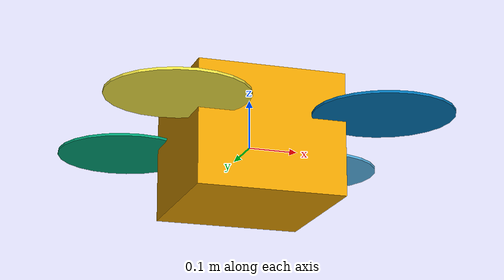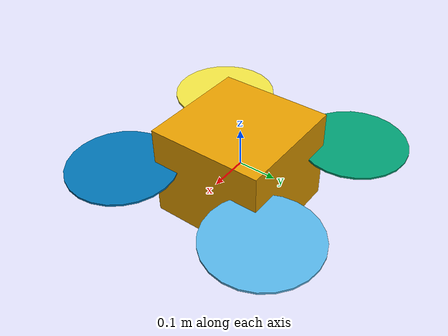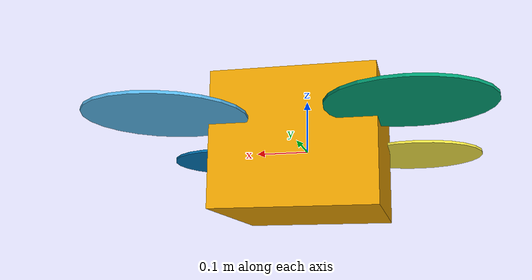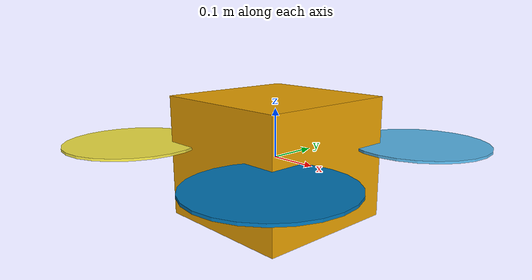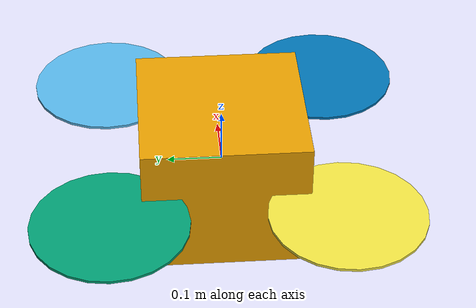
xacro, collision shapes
<?xml version='1.0' encoding='utf-8'?>
<robot name='marble_qav500_vio_testing' xmlns:xacro='http://ros.org/wiki/xacro'>
  <xacro:arg name="name" default="marble_qav500_vio_testing"/>
  <xacro:property name="robot_namespace" value="$(arg name)"/>
  <link name='${robot_namespace}/base_link'>
    <inertial>
      <origin xyz='0 0 0' rpy='0 -0 0'/>
      <mass value='3'/>
      <inertia ixx='0.075' ixy='0' ixz='0' iyy='0.075' iyz='0' izz='0.148916'/>
    </inertial>
    <collision name='base_link_inertia_collision'>
      <origin xyz='0 0 0' rpy='0 -0 0'/>
      <geometry>
        <box size='0.3 0.3 0.25'/>
      </geometry>
    </collision>
    <visual name='base_link_inertia_visual'>
      <origin xyz='0 0 -0.12' rpy='0 -0 0'/>
      <geometry>
        <mesh filename='package://marble_qav500_vio_testing/meshes/qav500.stl' scale='1 1 1'/>
      </geometry>
    </visual>
    <visual name='camera_visual'>
      <origin xyz='0.27 0 0.03' rpy='0 -0 0'/>
      <geometry>
        <box size='0.025 0.09 0.025'/>
      </geometry>
    </visual>
    <visual name='laser_visual'>
      <origin xyz='0 0 -0.05' rpy='0 -0 0'/>
      <geometry>
        <cylinder radius='0.03' length='0.1'/>
      </geometry>
    </visual>
    <visual name='tof_top_visual'>
      <origin xyz='0.24 0 0.055' rpy='0 -0 0'/>
      <geometry>
        <box size='0.017 0.068 0.00735'/>
      </geometry>
    </visual>
    <visual name='tof_bottom_visual'>
      <origin xyz='0.24 0 0.006' rpy='0 -0 0'/>
      <geometry>
        <box size='0.017 0.068 0.00735'/>
      </geometry>
    </visual>
  </link>
  <sensor name='imu_sensor' update_rate='250'>
    <parent link='${robot_namespace}/base_link'/>
    <origin xyz='0 0 0' rpy='0 -0 0'/>
  </sensor>
  <sensor name='air_pressure' update_rate='20'>
    <parent link='${robot_namespace}/base_link'/>
    <origin xyz='0 0 0' rpy='0 -0 0'/>
  </sensor>
  <sensor name='magnetometer' update_rate='20'>
    <parent link='${robot_namespace}/base_link'/>
    <origin xyz='0 0 0' rpy='0 -0 0'/>
  </sensor>
  <sensor name='camera_front' update_rate='30'>
    <parent link='${robot_namespace}/base_link'/>
    <origin xyz='0.27 0 0.03' rpy='0 -0 0'/>
    <camera>
      <image width='1280' height='720' format='R8G8B8' hfov='1.5184' near='0.01' far='300' />
    </camera>
  </sensor>
  <sensor name='front_laser' update_rate='15'>
    <parent link='${robot_namespace}/base_link'/>
    <origin xyz='0 0 -0.05' rpy='0 -0 0'/>
  </sensor>
  <sensor name='tof_top' update_rate='30'>
    <parent link='${robot_namespace}/base_link'/>
    <origin xyz='0.24 0 0.055' rpy='0 -1.57 0'/>
    <camera>
      <image width='224' height='171' format='R8G8B8' hfov='1.047' near='0.1' far='4' />
    </camera>
  </sensor>
  <sensor name='tof_bottom' update_rate='30'>
    <parent link='${robot_namespace}/base_link'/>
    <origin xyz='0.24 0 0' rpy='0 1.57 0'/>
    <camera>
      <image width='224' height='171' format='R8G8B8' hfov='1.047' near='0.1' far='4' />
    </camera>
  </sensor>
  <link name='${robot_namespace}/rotor_0'>
    <inertial>
      <origin xyz='0 0 0' rpy='0 -0 0'/>
      <mass value='0.005'/>
      <inertia ixx='9.75e-07' ixy='0' ixz='0' iyy='8.13545e-05' iyz='0' izz='8.22545e-05'/>
    </inertial>
    <collision name='rotor_0_collision'>
      <origin xyz='0 0 0' rpy='0 -0 0'/>
      <geometry>
        <cylinder radius='0.1397' length='0.005'/>
      </geometry>
    </collision>
    <visual name='rotor_0_visual'>
      <origin xyz='0 0 0' rpy='0 -0 0'/>
      <geometry>
        <mesh filename='package://marble_qav500_vio_testing/meshes/neo11_propeller_ccw.dae' scale='1 1 1'/>
      </geometry>
    </visual>
  </link>
  <link name='${robot_namespace}/rotor_1'>
    <inertial>
      <origin xyz='0 0 0' rpy='0 -0 0'/>
      <mass value='0.005'/>
      <inertia ixx='9.75e-07' ixy='0' ixz='0' iyy='8.13545e-05' iyz='0' izz='8.22545e-05'/>
    </inertial>
    <collision name='rotor_1_collision'>
      <origin xyz='0 0 0' rpy='0 -0 0'/>
      <geometry>
        <cylinder radius='0.1397' length='0.005'/>
      </geometry>
    </collision>
    <visual name='rotor_1_visual'>
      <origin xyz='0 0 0' rpy='0 -0 0'/>
      <geometry>
        <mesh filename='package://marble_qav500_vio_testing/meshes/neo11_propeller_cw.dae' scale='1 1 1'/>
      </geometry>
    </visual>
  </link>
  <link name='${robot_namespace}/rotor_2'>
    <inertial>
      <origin xyz='0 0 0' rpy='0 -0 0'/>
      <mass value='0.005'/>
      <inertia ixx='9.75e-07' ixy='0' ixz='0' iyy='8.13545e-05' iyz='0' izz='8.22545e-05'/>
    </inertial>
    <collision name='rotor_2_collision'>
      <origin xyz='0 0 0' rpy='0 -0 0'/>
      <geometry>
        <cylinder radius='0.1397' length='0.005'/>
      </geometry>
    </collision>
    <visual name='rotor_2_visual'>
      <origin xyz='0 0 0' rpy='0 -0 0'/>
      <geometry>
        <mesh filename='package://marble_qav500_vio_testing/meshes/neo11_propeller_ccw.dae' scale='1 1 1'/>
      </geometry>
    </visual>
  </link>
  <link name='${robot_namespace}/rotor_3'>
    <inertial>
      <origin xyz='0 0 0' rpy='0 -0 0'/>
      <mass value='0.005'/>
      <inertia ixx='9.75e-07' ixy='0' ixz='0' iyy='8.13545e-05' iyz='0' izz='8.22545e-05'/>
    </inertial>
    <collision name='rotor_3_collision'>
      <origin xyz='0 0 0' rpy='0 -0 0'/>
      <geometry>
        <cylinder radius='0.1397' length='0.005'/>
      </geometry>
    </collision>
    <visual name='rotor_3_visual'>
      <origin xyz='0 0 0' rpy='0 -0 0'/>
      <geometry>
        <mesh filename='package://marble_qav500_vio_testing/meshes/neo11_propeller_cw.dae' scale='1 1 1'/>
      </geometry>
    </visual>
  </link>
  <joint name='rotor_0_joint' type='revolute'>
    <origin xyz='0.206069 0.206092 0.028' rpy='0 -0 0.523599'/>
    <parent link='${robot_namespace}/base_link'/>
    <child link='${robot_namespace}/rotor_0'/>
    <dynamics damping='0' friction='0' />
    <axis xyz='0 0 1'/>
    <limit lower='-1e+16' upper='1e+16' effort='-1' velocity='-1'/>
  </joint>
  <joint name='rotor_1_joint' type='revolute'>
    <origin xyz='-0.206432 0.205944 0.028' rpy='0 -0 0'/>
    <parent link='${robot_namespace}/base_link'/>
    <child link='${robot_namespace}/rotor_1'/>
    <dynamics damping='0' friction='0' />
    <axis xyz='0 0 1'/>
    <limit lower='-1e+16' upper='1e+16' effort='-1' velocity='-1'/>
  </joint>
  <joint name='rotor_2_joint' type='revolute'>
    <origin xyz='-0.206432 -0.205944 0.028' rpy='0 0 -2.61799'/>
    <parent link='${robot_namespace}/base_link'/>
    <child link='${robot_namespace}/rotor_2'/>
    <dynamics damping='0' friction='0' />
    <axis xyz='0 0 1'/>
    <limit lower='-1e+16' upper='1e+16' effort='-1' velocity='-1'/>
  </joint>
  <joint name='rotor_3_joint' type='revolute'>
    <origin xyz='0.206432 -0.205944 0.028' rpy='0 0 -0.523599'/>
    <parent link='${robot_namespace}/base_link'/>
    <child link='${robot_namespace}/rotor_3'/>
    <dynamics damping='0' friction='0' />
    <axis xyz='0.075479 0.043578 0.996195'/>
    <limit lower='-1e+16' upper='1e+16' effort='-1' velocity='-1'/>
  </joint>
</robot>
